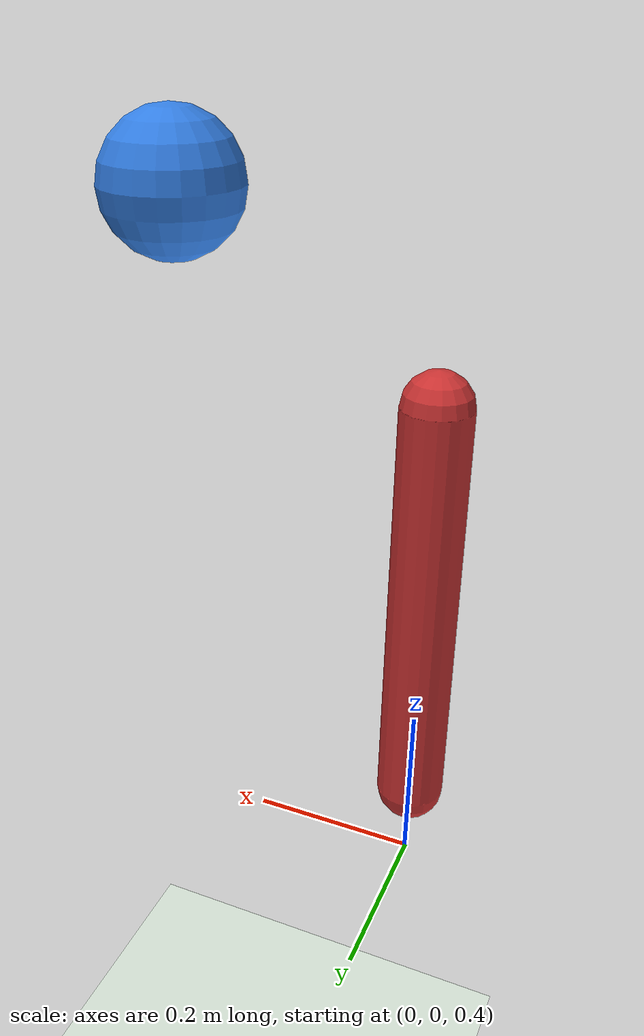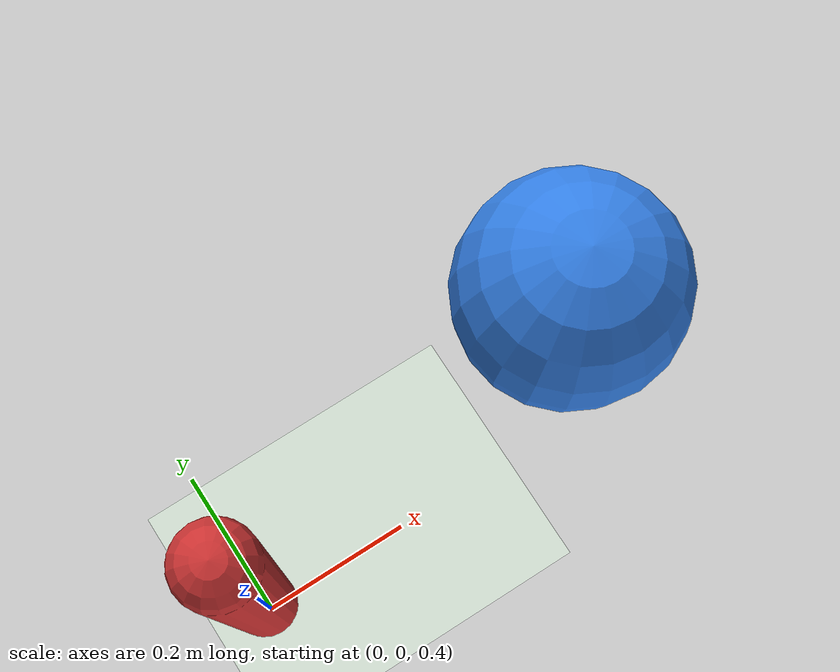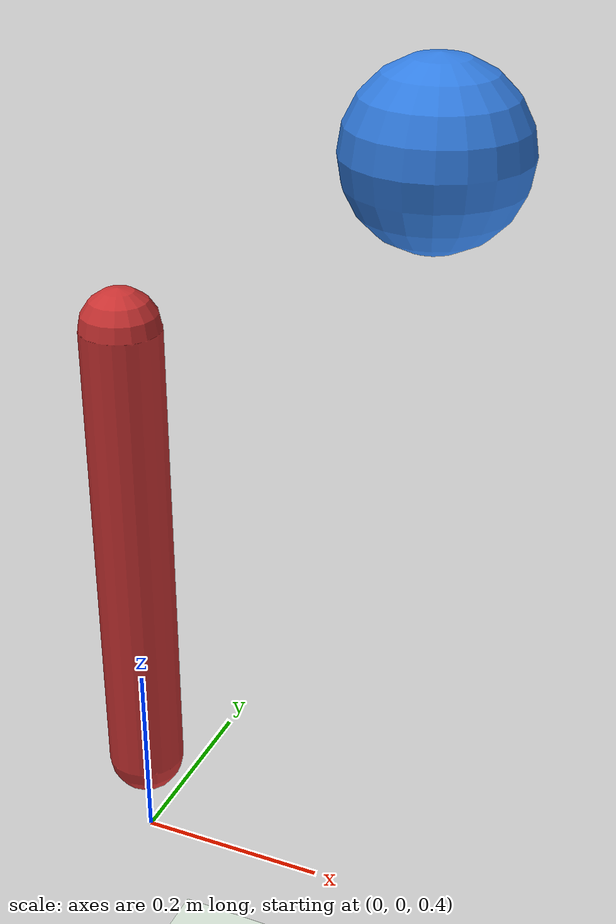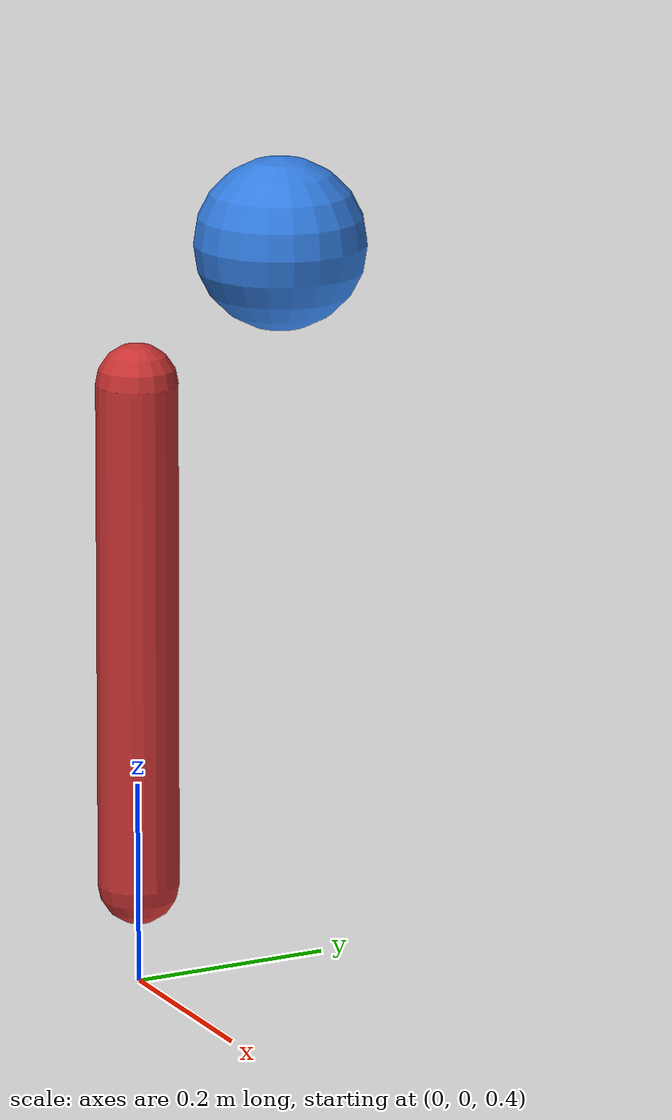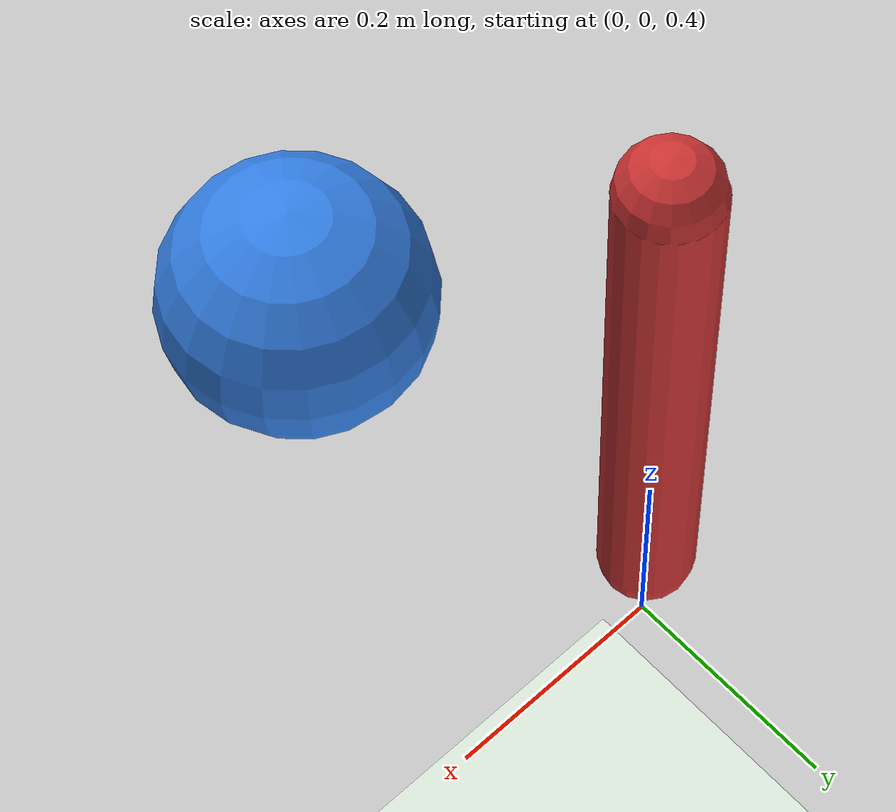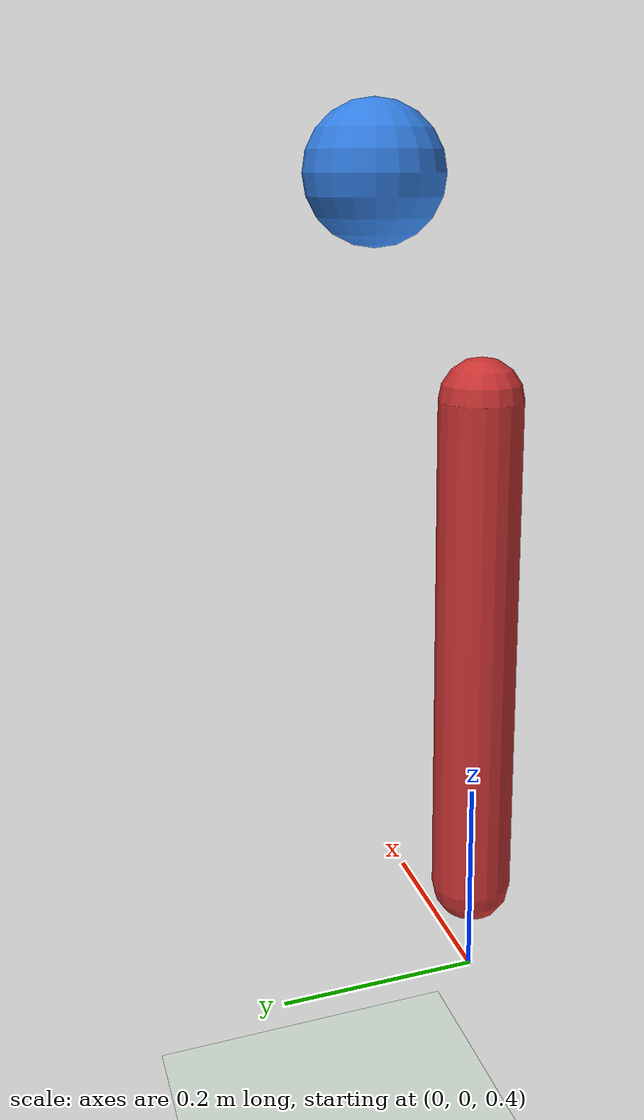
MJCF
<mujoco model="hello_world">

  <!-- 적분기/타임스텝 등 전역 옵션. 값을 바꾸면 수치 안정성·속도가 달라진다. -->
  <option timestep="0.002" gravity="0 0 -9.81" integrator="implicitfast"/>

  <!-- 시각 품질 관련(헤드리스에서는 무시됨). -->
  <visual>
    <headlight diffuse="0.6 0.6 0.6" ambient="0.3 0.3 0.3"/>
    <global azimuth="120" elevation="-20"/>
  </visual>

  <!-- geom 공통 속성: friction = (slide, spin, roll). 필요하면 per-geom으로 덮어씀. -->
  <default>
    <geom friction="1.0 0.005 0.0001" solref="0.01 1" solimp="0.9 0.95 0.001"/>
    <joint damping="0.1"/>
  </default>

  <worldbody>
    <!-- 1) 바닥. plane은 z=0 반무한 평면. size=(x, y, gridSpacing)이지만 물리에는 영향 없음. -->
    <geom name="floor" type="plane" size="2 2 0.1" rgba="0.85 0.9 0.85 1"/>

    <!-- 2) 벽걸이 막대(pendulum).
         world에 붙은 body이고 hinge 축은 y축이라 xz 평면에서 흔들린다.
         geom capsule의 size="radius halflength" 이므로 길이 = 2*halflength. -->
    <body name="pendulum" pos="0 0 1.0">
      <joint name="hinge" type="hinge" axis="0 1 0" damping="0.05"/>
      <!-- 막대의 기하학: 반지름 0.04, 반길이 0.25 → 전체 길이 0.5.
           fromto로 지정해 body origin에서 아래쪽(-z)로 뻗게 했다. -->
      <geom name="rod" type="capsule" fromto="0 0 0  0 0 -0.5" size="0.04"
            rgba="0.8 0.2 0.2 1"/>
    </body>

    <!-- 3) 공중에서 떨어지는 공(free body).
         freejoint를 명시하면 이 body는 3자유도 병진 + 3자유도 회전을 갖는다 (qpos 7, qvel 6). -->
    <body name="ball" pos="0.3 0 1.2">
      <freejoint name="ball_free"/>
      <geom name="ball_geom" type="sphere" size="0.08" rgba="0.2 0.5 0.9 1"/>
    </body>
  </worldbody>

  <!-- hinge에 달린 motor. ctrl은 torque로 해석됨. gear로 스케일링. -->
  <actuator>
    <motor name="hinge_motor" joint="hinge" gear="1" ctrlrange="-1 1" ctrllimited="true"/>
  </actuator>

</mujoco>
